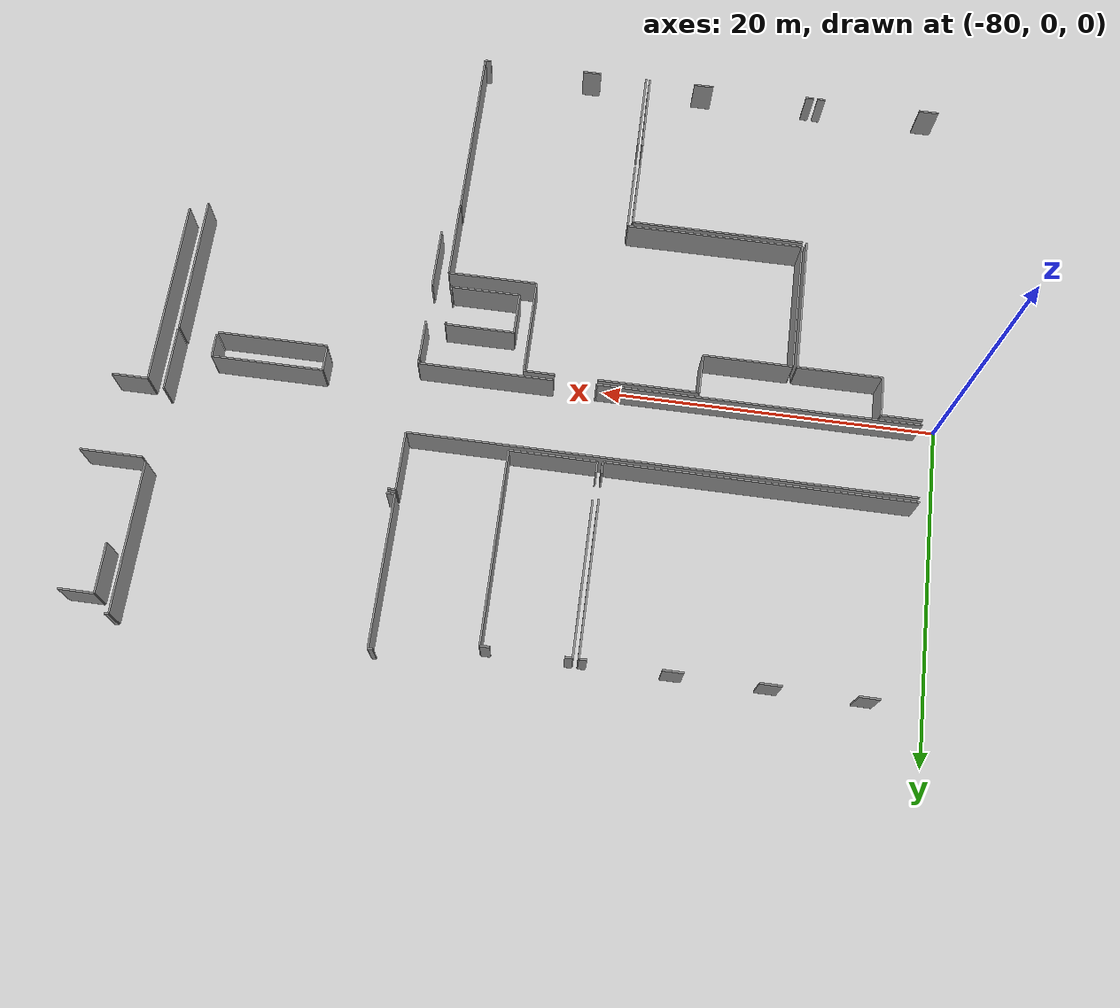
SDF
<sdf version="1.6">
 <world name="default">
  <model name="ground_plane">
   <static>1</static>
   <link name="link">
    <collision name="collision">
     <geometry><plane><normal>0 0 1</normal><size>100 100</size></plane></geometry>
     <surface><friction><ode><mu>100</mu><mu2>50</mu2></ode></friction></surface>
    </collision>
    <visual name="visual">
     <cast_shadows>0</cast_shadows>
     <geometry><plane><normal>0 0 1</normal><size>100 100</size></plane></geometry>
     <material>
      <script><uri>file://media/materials/scripts/gazebo.material</uri><name>Gazebo/Grey</name></script>
     </material>
    </visual>
   </link>
  </model>
  <model name="50037765_PLAN3">
   <static>1</static>
   <link name="Wall_52">
    <collision name="Wall_52_Collision">
     <geometry><box><size>1.44526558598 0.1 2.5</size></box></geometry>
     <pose>0.72263279299 0 1.25 0 0 0</pose>
    </collision>
    <visual name="Wall_52_Visual">
     <pose>0.72263279299 0 1.25 0 0 0</pose>
     <geometry><box><size>1.44526558598 0.1 2.5</size></box></geometry>
     <material>
      <script><uri>file://media/materials/scripts/gazebo.material</uri><name>Gazebo/Grey</name></script>
      <ambient>1 1 1 1</ambient>
     </material>
    </visual>
    <pose>99.1906411047 -20.8225254021 0 0 0 1.57079632679</pose>
   </link>
   <link name="Wall_53">
    <collision name="Wall_53_Collision">
     <geometry><box><size>6.73245683712 0.1 2.5</size></box></geometry>
     <pose>3.36622841856 0 1.25 0 0 0</pose>
    </collision>
    <visual name="Wall_53_Visual">
     <pose>3.36622841856 0 1.25 0 0 0</pose>
     <geometry><box><size>6.73245683712 0.1 2.5</size></box></geometry>
     <material>
      <script><uri>file://media/materials/scripts/gazebo.material</uri><name>Gazebo/Grey</name></script>
      <ambient>1 1 1 1</ambient>
     </material>
    </visual>
    <pose>99.1906411047 -19.3772598161 0 0 0 3.14159265359</pose>
   </link>
   <link name="Wall_54">
    <collision name="Wall_54_Collision">
     <geometry><box><size>1.43077734497 0.1 2.5</size></box></geometry>
     <pose>0.715388672483 0 1.25 0 0 0</pose>
    </collision>
    <visual name="Wall_54_Visual">
     <pose>0.715388672483 0 1.25 0 0 0</pose>
     <geometry><box><size>1.43077734497 0.1 2.5</size></box></geometry>
     <material>
      <script><uri>file://media/materials/scripts/gazebo.material</uri><name>Gazebo/Grey</name></script>
      <ambient>1 1 1 1</ambient>
     </material>
    </visual>
    <pose>92.4581842675 -19.3772598161 0 0 0 -1.57079632679</pose>
   </link>
   <link name="Wall_55">
    <collision name="Wall_55_Collision">
     <geometry><box><size>0.224694825537 0.1 2.5</size></box></geometry>
     <pose>0.112347412769 0 1.25 0 0 0</pose>
    </collision>
    <visual name="Wall_55_Visual">
     <pose>0.112347412769 0 1.25 0 0 0</pose>
     <geometry><box><size>0.224694825537 0.1 2.5</size></box></geometry>
     <material>
      <script><uri>file://media/materials/scripts/gazebo.material</uri><name>Gazebo/Grey</name></script>
      <ambient>1 1 1 1</ambient>
     </material>
    </visual>
    <pose>86.8952080778 -20.8080371611 0 0 0 1.57079632679</pose>
   </link>
   <link name="Wall_56">
    <collision name="Wall_56_Collision">
     <geometry><box><size>8.12891992705 0.1 2.5</size></box></geometry>
     <pose>4.06445996353 0 1.25 0 0 0</pose>
    </collision>
    <visual name="Wall_56_Visual">
     <pose>4.06445996353 0 1.25 0 0 0</pose>
     <geometry><box><size>8.12891992705 0.1 2.5</size></box></geometry>
     <material>
      <script><uri>file://media/materials/scripts/gazebo.material</uri><name>Gazebo/Grey</name></script>
      <ambient>1 1 1 1</ambient>
     </material>
    </visual>
    <pose>86.8952080778 -20.5833423355 0 0 0 3.14159265359</pose>
   </link>
   <link name="Wall_57">
    <collision name="Wall_57_Collision">
     <geometry><box><size>0.0612572997223 0.1 2.5</size></box></geometry>
     <pose>0.0306286498612 0 1.25 0 0 0</pose>
    </collision>
    <visual name="Wall_57_Visual">
     <pose>0.0306286498612 0 1.25 0 0 0</pose>
     <geometry><box><size>0.0612572997223 0.1 2.5</size></box></geometry>
     <material>
      <script><uri>file://media/materials/scripts/gazebo.material</uri><name>Gazebo/Grey</name></script>
      <ambient>1 1 1 1</ambient>
     </material>
    </visual>
    <pose>76.1894146878 -20.5833423355 0 0 0 -1.57079632679</pose>
   </link>
   <link name="Wall_58">
    <collision name="Wall_58_Collision">
     <geometry><box><size>19.2269125431 0.1 2.5</size></box></geometry>
     <pose>9.61345627157 0 1.25 0 0 0</pose>
    </collision>
    <visual name="Wall_58_Visual">
     <pose>9.61345627157 0 1.25 0 0 0</pose>
     <geometry><box><size>19.2269125431 0.1 2.5</size></box></geometry>
     <material>
      <script><uri>file://media/materials/scripts/gazebo.material</uri><name>Gazebo/Grey</name></script>
      <ambient>1 1 1 1</ambient>
     </material>
    </visual>
    <pose>76.1894146878 -20.6445996353 0 0 0 3.14159265359</pose>
   </link>
   <link name="Wall_63">
    <collision name="Wall_63_Collision">
     <geometry><box><size>29.9428731199 0.1 2.5</size></box></geometry>
     <pose>14.9714365599 0 1.25 0 0 0</pose>
    </collision>
    <visual name="Wall_63_Visual">
     <pose>14.9714365599 0 1.25 0 0 0</pose>
     <geometry><box><size>29.9428731199 0.1 2.5</size></box></geometry>
     <material>
      <script><uri>file://media/materials/scripts/gazebo.material</uri><name>Gazebo/Grey</name></script>
      <ambient>1 1 1 1</ambient>
     </material>
    </visual>
    <pose>56.9625021446 -16.1278523724 0 0 0 0.0</pose>
   </link>
   <link name="Wall_64">
    <collision name="Wall_64_Collision">
     <geometry><box><size>3.56919088258 0.1 2.5</size></box></geometry>
     <pose>1.78459544129 0 1.25 0 0 0</pose>
    </collision>
    <visual name="Wall_64_Visual">
     <pose>1.78459544129 0 1.25 0 0 0</pose>
     <geometry><box><size>3.56919088258 0.1 2.5</size></box></geometry>
     <material>
      <script><uri>file://media/materials/scripts/gazebo.material</uri><name>Gazebo/Grey</name></script>
      <ambient>1 1 1 1</ambient>
     </material>
    </visual>
    <pose>86.9053752645 -16.1278523724 0 0 0 1.57079632679</pose>
   </link>
   <link name="Wall_65">
    <collision name="Wall_65_Collision">
     <geometry><box><size>0.469978204094 0.1 2.5</size></box></geometry>
     <pose>0.234989102047 0 1.25 0 0 0</pose>
    </collision>
    <visual name="Wall_65_Visual">
     <pose>0.234989102047 0 1.25 0 0 0</pose>
     <geometry><box><size>0.469978204094 0.1 2.5</size></box></geometry>
     <material>
      <script><uri>file://media/materials/scripts/gazebo.material</uri><name>Gazebo/Grey</name></script>
      <ambient>1 1 1 1</ambient>
     </material>
    </visual>
    <pose>86.9053752645 -12.5586614899 0 0 0 0.0</pose>
   </link>
   <link name="Wall_66">
    <collision name="Wall_66_Collision">
     <geometry><box><size>3.86607838194 0.1 2.5</size></box></geometry>
     <pose>1.93303919097 0 1.25 0 0 0</pose>
    </collision>
    <visual name="Wall_66_Visual">
     <pose>1.93303919097 0 1.25 0 0 0</pose>
     <geometry><box><size>3.86607838194 0.1 2.5</size></box></geometry>
     <material>
      <script><uri>file://media/materials/scripts/gazebo.material</uri><name>Gazebo/Grey</name></script>
      <ambient>1 1 1 1</ambient>
     </material>
    </visual>
    <pose>101.56696681 -16.9564526686 0 0 0 -1.57250572684</pose>
   </link>
   <link name="Wall_67">
    <collision name="Wall_67_Collision">
     <geometry><box><size>18.3477050753 0.1 2.5</size></box></geometry>
     <pose>9.17385253767 0 1.25 0 0 0</pose>
    </collision>
    <visual name="Wall_67_Visual">
     <pose>9.17385253767 0 1.25 0 0 0</pose>
     <geometry><box><size>18.3477050753 0.1 2.5</size></box></geometry>
     <material>
      <script><uri>file://media/materials/scripts/gazebo.material</uri><name>Gazebo/Grey</name></script>
      <ambient>1 1 1 1</ambient>
     </material>
    </visual>
    <pose>75.2812307379 -15.8521945237 0 0 0 3.14159265359</pose>
   </link>
   <link name="Wall_72">
    <collision name="Wall_72_Collision">
     <geometry><box><size>1.18600232574 0.1 2.5</size></box></geometry>
     <pose>0.593001162872 0 1.25 0 0 0</pose>
    </collision>
    <visual name="Wall_72_Visual">
     <pose>0.593001162872 0 1.25 0 0 0</pose>
     <geometry><box><size>1.18600232574 0.1 2.5</size></box></geometry>
     <material>
      <script><uri>file://media/materials/scripts/gazebo.material</uri><name>Gazebo/Grey</name></script>
      <ambient>1 1 1 1</ambient>
     </material>
    </visual>
    <pose>58.5900145518 -4.20443670609 0 0 0 0.0</pose>
   </link>
   <link name="Wall_73">
    <collision name="Wall_73_Collision">
     <geometry><box><size>1.27547356849 0.1 2.5</size></box></geometry>
     <pose>0.637736784246 0 1.25 0 0 0</pose>
    </collision>
    <visual name="Wall_73_Visual">
     <pose>0.637736784246 0 1.25 0 0 0</pose>
     <geometry><box><size>1.27547356849 0.1 2.5</size></box></geometry>
     <material>
      <script><uri>file://media/materials/scripts/gazebo.material</uri><name>Gazebo/Grey</name></script>
      <ambient>1 1 1 1</ambient>
     </material>
    </visual>
    <pose>63.96337271 -4.20443670609 0 0 0 0.0</pose>
   </link>
   <link name="Wall_74">
    <collision name="Wall_74_Collision">
     <geometry><box><size>1.21269119077 0.1 2.5</size></box></geometry>
     <pose>0.606345595384 0 1.25 0 0 0</pose>
    </collision>
    <visual name="Wall_74_Visual">
     <pose>0.606345595384 0 1.25 0 0 0</pose>
     <geometry><box><size>1.21269119077 0.1 2.5</size></box></geometry>
     <material>
      <script><uri>file://media/materials/scripts/gazebo.material</uri><name>Gazebo/Grey</name></script>
      <ambient>1 1 1 1</ambient>
     </material>
    </visual>
    <pose>69.3855333643 -4.20443670609 0 0 0 0.0</pose>
   </link>
   <link name="Wall_75">
    <collision name="Wall_75_Collision">
     <geometry><box><size>0.452439807078 0.1 2.5</size></box></geometry>
     <pose>0.226219903539 0 1.25 0 0 0</pose>
    </collision>
    <visual name="Wall_75_Visual">
     <pose>0.226219903539 0 1.25 0 0 0</pose>
     <geometry><box><size>0.452439807078 0.1 2.5</size></box></geometry>
     <material>
      <script><uri>file://media/materials/scripts/gazebo.material</uri><name>Gazebo/Grey</name></script>
      <ambient>1 1 1 1</ambient>
     </material>
    </visual>
    <pose>74.7825302315 -4.20443670609 0 0 0 0.0</pose>
   </link>
   <link name="Wall_76">
    <collision name="Wall_76_Collision">
     <geometry><box><size>9.34908400003 0.1 2.5</size></box></geometry>
     <pose>4.67454200001 0 1.25 0 0 0</pose>
    </collision>
    <visual name="Wall_76_Visual">
     <pose>4.67454200001 0 1.25 0 0 0</pose>
     <geometry><box><size>9.34908400003 0.1 2.5</size></box></geometry>
     <material>
      <script><uri>file://media/materials/scripts/gazebo.material</uri><name>Gazebo/Grey</name></script>
      <ambient>1 1 1 1</ambient>
     </material>
    </visual>
    <pose>75.2349700386 -4.20443670609 0 0 0 -1.57079632679</pose>
   </link>
   <link name="Wall_77">
    <collision name="Wall_77_Collision">
     <geometry><box><size>0.731519050086 0.1 2.5</size></box></geometry>
     <pose>0.365759525043 0 1.25 0 0 0</pose>
    </collision>
    <visual name="Wall_77_Visual">
     <pose>0.365759525043 0 1.25 0 0 0</pose>
     <geometry><box><size>0.731519050086 0.1 2.5</size></box></geometry>
     <material>
      <script><uri>file://media/materials/scripts/gazebo.material</uri><name>Gazebo/Grey</name></script>
      <ambient>1 1 1 1</ambient>
     </material>
    </visual>
    <pose>75.2349700386 -15.1221396844 0 0 0 -1.50751487255</pose>
   </link>
   <link name="Wall_78">
    <collision name="Wall_78_Collision">
     <geometry><box><size>5.21729184274 0.1 2.5</size></box></geometry>
     <pose>2.60864592137 0 1.25 0 0 0</pose>
    </collision>
    <visual name="Wall_78_Visual">
     <pose>2.60864592137 0 1.25 0 0 0</pose>
     <geometry><box><size>5.21729184274 0.1 2.5</size></box></geometry>
     <material>
      <script><uri>file://media/materials/scripts/gazebo.material</uri><name>Gazebo/Grey</name></script>
      <ambient>1 1 1 1</ambient>
     </material>
    </visual>
    <pose>80.7964211503 -15.8342494392 0 0 0 3.14159265359</pose>
   </link>
   <link name="Wall_79">
    <collision name="Wall_79_Collision">
     <geometry><box><size>0.6975960958 0.1 2.5</size></box></geometry>
     <pose>0.3487980479 0 1.25 0 0 0</pose>
    </collision>
    <visual name="Wall_79_Visual">
     <pose>0.3487980479 0 1.25 0 0 0</pose>
     <geometry><box><size>0.6975960958 0.1 2.5</size></box></geometry>
     <material>
      <script><uri>file://media/materials/scripts/gazebo.material</uri><name>Gazebo/Grey</name></script>
      <ambient>1 1 1 1</ambient>
     </material>
    </visual>
    <pose>75.5791293076 -15.8342494392 0 0 0 1.57079632679</pose>
   </link>
   <link name="Wall_80">
    <collision name="Wall_80_Collision">
     <geometry><box><size>9.29082602037 0.1 2.5</size></box></geometry>
     <pose>4.64541301019 0 1.25 0 0 0</pose>
    </collision>
    <visual name="Wall_80_Visual">
     <pose>4.64541301019 0 1.25 0 0 0</pose>
     <geometry><box><size>9.29082602037 0.1 2.5</size></box></geometry>
     <material>
      <script><uri>file://media/materials/scripts/gazebo.material</uri><name>Gazebo/Grey</name></script>
      <ambient>1 1 1 1</ambient>
     </material>
    </visual>
    <pose>75.5791293076 -13.4842821648 0 0 0 1.57079632679</pose>
   </link>
   <link name="Wall_81">
    <collision name="Wall_81_Collision">
     <geometry><box><size>0.450406369742 0.1 2.5</size></box></geometry>
     <pose>0.225203184871 0 1.25 0 0 0</pose>
    </collision>
    <visual name="Wall_81_Visual">
     <pose>0.225203184871 0 1.25 0 0 0</pose>
     <geometry><box><size>0.450406369742 0.1 2.5</size></box></geometry>
     <material>
      <script><uri>file://media/materials/scripts/gazebo.material</uri><name>Gazebo/Grey</name></script>
      <ambient>1 1 1 1</ambient>
     </material>
    </visual>
    <pose>75.5791293076 -4.19345614448 0 0 0 0.0</pose>
   </link>
   <link name="Wall_82">
    <collision name="Wall_82_Collision">
     <geometry><box><size>0.56859991485 0.1 2.5</size></box></geometry>
     <pose>0.284299957425 0 1.25 0 0 0</pose>
    </collision>
    <visual name="Wall_82_Visual">
     <pose>0.284299957425 0 1.25 0 0 0</pose>
     <geometry><box><size>0.56859991485 0.1 2.5</size></box></geometry>
     <material>
      <script><uri>file://media/materials/scripts/gazebo.material</uri><name>Gazebo/Grey</name></script>
      <ambient>1 1 1 1</ambient>
     </material>
    </visual>
    <pose>80.2100286588 -4.19345614448 0 0 0 0.0</pose>
   </link>
   <link name="Wall_83">
    <collision name="Wall_83_Collision">
     <geometry><box><size>11.6408068924 0.1 2.5</size></box></geometry>
     <pose>5.82040344621 0 1.25 0 0 0</pose>
    </collision>
    <visual name="Wall_83_Visual">
     <pose>5.82040344621 0 1.25 0 0 0</pose>
     <geometry><box><size>11.6408068924 0.1 2.5</size></box></geometry>
     <material>
      <script><uri>file://media/materials/scripts/gazebo.material</uri><name>Gazebo/Grey</name></script>
      <ambient>1 1 1 1</ambient>
     </material>
    </visual>
    <pose>80.7786285736 -4.19345614448 0 0 0 -1.56926786027</pose>
   </link>
   <link name="Wall_84">
    <collision name="Wall_84_Collision">
     <geometry><box><size>8.39097916362 0.1 2.5</size></box></geometry>
     <pose>4.19548958181 0 1.25 0 0 0</pose>
    </collision>
    <visual name="Wall_84_Visual">
     <pose>4.19548958181 0 1.25 0 0 0</pose>
     <geometry><box><size>8.39097916362 0.1 2.5</size></box></geometry>
     <material>
      <script><uri>file://media/materials/scripts/gazebo.material</uri><name>Gazebo/Grey</name></script>
      <ambient>1 1 1 1</ambient>
     </material>
    </visual>
    <pose>64.4999459868 -31.7545386957 0 0 0 1.57079632679</pose>
   </link>
   <link name="Wall_85">
    <collision name="Wall_85_Collision">
     <geometry><box><size>5.09731903996 0.1 2.5</size></box></geometry>
     <pose>2.54865951998 0 1.25 0 0 0</pose>
    </collision>
    <visual name="Wall_85_Visual">
     <pose>2.54865951998 0 1.25 0 0 0</pose>
     <geometry><box><size>5.09731903996 0.1 2.5</size></box></geometry>
     <material>
      <script><uri>file://media/materials/scripts/gazebo.material</uri><name>Gazebo/Grey</name></script>
      <ambient>1 1 1 1</ambient>
     </material>
    </visual>
    <pose>64.4999459868 -23.3635595321 0 0 0 3.14159265359</pose>
   </link>
   <link name="Wall_86">
    <collision name="Wall_86_Collision">
     <geometry><box><size>2.41775699153 0.1 2.5</size></box></geometry>
     <pose>1.20887849576 0 1.25 0 0 0</pose>
    </collision>
    <visual name="Wall_86_Visual">
     <pose>1.20887849576 0 1.25 0 0 0</pose>
     <geometry><box><size>2.41775699153 0.1 2.5</size></box></geometry>
     <material>
      <script><uri>file://media/materials/scripts/gazebo.material</uri><name>Gazebo/Grey</name></script>
      <ambient>1 1 1 1</ambient>
     </material>
    </visual>
    <pose>59.4026269469 -23.3635595321 0 0 0 1.57079632679</pose>
   </link>
   <link name="Wall_87">
    <collision name="Wall_87_Collision">
     <geometry><box><size>2.44114152088 0.1 2.5</size></box></geometry>
     <pose>1.22057076044 0 1.25 0 0 0</pose>
    </collision>
    <visual name="Wall_87_Visual">
     <pose>1.22057076044 0 1.25 0 0 0</pose>
     <geometry><box><size>2.44114152088 0.1 2.5</size></box></geometry>
     <material>
      <script><uri>file://media/materials/scripts/gazebo.material</uri><name>Gazebo/Grey</name></script>
      <ambient>1 1 1 1</ambient>
     </material>
    </visual>
    <pose>59.4026269469 -20.9458025405 0 0 0 3.14159265359</pose>
   </link>
   <link name="Wall_94">
    <collision name="Wall_94_Collision">
     <geometry><box><size>1.2131995501 0.1 2.5</size></box></geometry>
     <pose>0.606599775051 0 1.25 0 0 0</pose>
    </collision>
    <visual name="Wall_94_Visual">
     <pose>0.606599775051 0 1.25 0 0 0</pose>
     <geometry><box><size>1.2131995501 0.1 2.5</size></box></geometry>
     <material>
      <script><uri>file://media/materials/scripts/gazebo.material</uri><name>Gazebo/Grey</name></script>
      <ambient>1 1 1 1</ambient>
     </material>
    </visual>
    <pose>56.7932184865 -42.1916641778 0 0 0 0.0</pose>
   </link>
   <link name="Wall_95">
    <collision name="Wall_95_Collision">
     <geometry><box><size>0.495065326786 0.1 2.5</size></box></geometry>
     <pose>0.247532663393 0 1.25 0 0 0</pose>
    </collision>
    <visual name="Wall_95_Visual">
     <pose>0.247532663393 0 1.25 0 0 0</pose>
     <geometry><box><size>0.495065326786 0.1 2.5</size></box></geometry>
     <material>
      <script><uri>file://media/materials/scripts/gazebo.material</uri><name>Gazebo/Grey</name></script>
      <ambient>1 1 1 1</ambient>
     </material>
    </visual>
    <pose>64.006837433 -42.1916641778 0 0 0 -0.0889399985977</pose>
   </link>
   <link name="Wall_96">
    <collision name="Wall_96_Collision">
     <geometry><box><size>1.22311255711 0.1 2.5</size></box></geometry>
     <pose>0.611556278555 0 1.25 0 0 0</pose>
    </collision>
    <visual name="Wall_96_Visual">
     <pose>0.611556278555 0 1.25 0 0 0</pose>
     <geometry><box><size>1.22311255711 0.1 2.5</size></box></geometry>
     <material>
      <script><uri>file://media/materials/scripts/gazebo.material</uri><name>Gazebo/Grey</name></script>
      <ambient>1 1 1 1</ambient>
     </material>
    </visual>
    <pose>72.431114133 -42.2259784329 0 0 0 3.14159265359</pose>
   </link>
   <link name="Wall_97">
    <collision name="Wall_97_Collision">
     <geometry><box><size>0.496667069118 0.1 2.5</size></box></geometry>
     <pose>0.248333534559 0 1.25 0 0 0</pose>
    </collision>
    <visual name="Wall_97_Visual">
     <pose>0.248333534559 0 1.25 0 0 0</pose>
     <geometry><box><size>0.496667069118 0.1 2.5</size></box></geometry>
     <material>
      <script><uri>file://media/materials/scripts/gazebo.material</uri><name>Gazebo/Grey</name></script>
      <ambient>1 1 1 1</ambient>
     </material>
    </visual>
    <pose>65.2452007702 -42.2259784329 0 0 0 3.14159265359</pose>
   </link>
   <link name="Wall_98">
    <collision name="Wall_98_Collision">
     <geometry><box><size>10.5110917652 0.1 2.5</size></box></geometry>
     <pose>5.25554588261 0 1.25 0 0 0</pose>
    </collision>
    <visual name="Wall_98_Visual">
     <pose>5.25554588261 0 1.25 0 0 0</pose>
     <geometry><box><size>10.5110917652 0.1 2.5</size></box></geometry>
     <material>
      <script><uri>file://media/materials/scripts/gazebo.material</uri><name>Gazebo/Grey</name></script>
      <ambient>1 1 1 1</ambient>
     </material>
    </visual>
    <pose>64.748533701 -31.7530136177 0 0 0 0.0</pose>
   </link>
   <link name="Wall_99">
    <collision name="Wall_99_Collision">
     <geometry><box><size>3.96977803761 0.1 2.5</size></box></geometry>
     <pose>1.9848890188 0 1.25 0 0 0</pose>
    </collision>
    <visual name="Wall_99_Visual">
     <pose>1.9848890188 0 1.25 0 0 0</pose>
     <geometry><box><size>3.96977803761 0.1 2.5</size></box></geometry>
     <material>
      <script><uri>file://media/materials/scripts/gazebo.material</uri><name>Gazebo/Grey</name></script>
      <ambient>1 1 1 1</ambient>
     </material>
    </visual>
    <pose>75.2596254663 -31.7530136177 0 0 0 -1.57079632679</pose>
   </link>
   <link name="Wall_100">
    <collision name="Wall_100_Collision">
     <geometry><box><size>4.94470405439 0.1 2.5</size></box></geometry>
     <pose>2.47235202719 0 1.25 0 0 0</pose>
    </collision>
    <visual name="Wall_100_Visual">
     <pose>2.47235202719 0 1.25 0 0 0</pose>
     <geometry><box><size>4.94470405439 0.1 2.5</size></box></geometry>
     <material>
      <script><uri>file://media/materials/scripts/gazebo.material</uri><name>Gazebo/Grey</name></script>
      <ambient>1 1 1 1</ambient>
     </material>
    </visual>
    <pose>75.2596254663 -37.2814213727 0 0 0 -1.56308558669</pose>
   </link>
   <link name="Wall_101">
    <collision name="Wall_101_Collision">
     <geometry><box><size>0.388132351353 0.1 2.5</size></box></geometry>
     <pose>0.194066175676 0 1.25 0 0 0</pose>
    </collision>
    <visual name="Wall_101_Visual">
     <pose>0.194066175676 0 1.25 0 0 0</pose>
     <geometry><box><size>0.388132351353 0.1 2.5</size></box></geometry>
     <material>
      <script><uri>file://media/materials/scripts/gazebo.material</uri><name>Gazebo/Grey</name></script>
      <ambient>1 1 1 1</ambient>
     </material>
    </visual>
    <pose>86.0195591254 -42.2468211655 0 0 0 3.14159265359</pose>
   </link>
   <link name="Wall_102">
    <collision name="Wall_102_Collision">
     <geometry><box><size>1.14990881304 0.1 2.5</size></box></geometry>
     <pose>0.574954406522 0 1.25 0 0 0</pose>
    </collision>
    <visual name="Wall_102_Visual">
     <pose>0.574954406522 0 1.25 0 0 0</pose>
     <geometry><box><size>1.14990881304 0.1 2.5</size></box></geometry>
     <material>
      <script><uri>file://media/materials/scripts/gazebo.material</uri><name>Gazebo/Grey</name></script>
      <ambient>1 1 1 1</ambient>
     </material>
    </visual>
    <pose>79.6160107772 -42.2468211655 0 0 0 3.14159265359</pose>
   </link>
   <link name="Wall_103">
    <collision name="Wall_103_Collision">
     <geometry><box><size>4.90668428979 0.1 2.5</size></box></geometry>
     <pose>2.4533421449 0 1.25 0 0 0</pose>
    </collision>
    <visual name="Wall_103_Visual">
     <pose>2.4533421449 0 1.25 0 0 0</pose>
     <geometry><box><size>4.90668428979 0.1 2.5</size></box></geometry>
     <material>
      <script><uri>file://media/materials/scripts/gazebo.material</uri><name>Gazebo/Grey</name></script>
      <ambient>1 1 1 1</ambient>
     </material>
    </visual>
    <pose>75.5468484899 -42.2468211655 0 0 0 1.57079632679</pose>
   </link>
   <link name="Wall_104">
    <collision name="Wall_104_Collision">
     <geometry><box><size>4.20616512782 0.1 2.5</size></box></geometry>
     <pose>2.10308256391 0 1.25 0 0 0</pose>
    </collision>
    <visual name="Wall_104_Visual">
     <pose>2.10308256391 0 1.25 0 0 0</pose>
     <geometry><box><size>4.20616512782 0.1 2.5</size></box></geometry>
     <material>
      <script><uri>file://media/materials/scripts/gazebo.material</uri><name>Gazebo/Grey</name></script>
      <ambient>1 1 1 1</ambient>
     </material>
    </visual>
    <pose>75.5468484899 -35.7090659533 0 0 0 1.57079632679</pose>
   </link>
   <link name="Wall_105">
    <collision name="Wall_105_Collision">
     <geometry><box><size>10.7439363627 0.1 2.5</size></box></geometry>
     <pose>5.37196818137 0 1.25 0 0 0</pose>
    </collision>
    <visual name="Wall_105_Visual">
     <pose>5.37196818137 0 1.25 0 0 0</pose>
     <geometry><box><size>10.7439363627 0.1 2.5</size></box></geometry>
     <material>
      <script><uri>file://media/materials/scripts/gazebo.material</uri><name>Gazebo/Grey</name></script>
      <ambient>1 1 1 1</ambient>
     </material>
    </visual>
    <pose>86.0010040097 -31.5029008254 0 0 0 -1.56906929452</pose>
   </link>
   <link name="Wall_106">
    <collision name="Wall_106_Collision">
     <geometry><box><size>10.7581544014 0.1 2.5</size></box></geometry>
     <pose>5.37907720072 0 1.25 0 0 0</pose>
    </collision>
    <visual name="Wall_106_Visual">
     <pose>5.37907720072 0 1.25 0 0 0</pose>
     <geometry><box><size>10.7581544014 0.1 2.5</size></box></geometry>
     <material>
      <script><uri>file://media/materials/scripts/gazebo.material</uri><name>Gazebo/Grey</name></script>
      <ambient>1 1 1 1</ambient>
     </material>
    </visual>
    <pose>75.5232097808 -31.4574026651 0 0 0 3.14159265359</pose>
   </link>
   <link name="Wall_107">
    <collision name="Wall_107_Collision">
     <geometry><box><size>8.08138832934 0.1 2.5</size></box></geometry>
     <pose>4.04069416467 0 1.25 0 0 0</pose>
    </collision>
    <visual name="Wall_107_Visual">
     <pose>4.04069416467 0 1.25 0 0 0</pose>
     <geometry><box><size>8.08138832934 0.1 2.5</size></box></geometry>
     <material>
      <script><uri>file://media/materials/scripts/gazebo.material</uri><name>Gazebo/Grey</name></script>
      <ambient>1 1 1 1</ambient>
     </material>
    </visual>
    <pose>64.7650553794 -31.4574026651 0 0 0 1.57079632679</pose>
   </link>
   <link name="Wall_108">
    <collision name="Wall_108_Collision">
     <geometry><box><size>5.3603949952 0.1 2.5</size></box></geometry>
     <pose>2.6801974976 0 1.25 0 0 0</pose>
    </collision>
    <visual name="Wall_108_Visual">
     <pose>2.6801974976 0 1.25 0 0 0</pose>
     <geometry><box><size>5.3603949952 0.1 2.5</size></box></geometry>
     <material>
      <script><uri>file://media/materials/scripts/gazebo.material</uri><name>Gazebo/Grey</name></script>
      <ambient>1 1 1 1</ambient>
     </material>
    </visual>
    <pose>64.7650553794 -23.3760143357 0 0 0 0.0</pose>
   </link>
   <link name="Wall_109">
    <collision name="Wall_109_Collision">
     <geometry><box><size>2.43885390388 0.1 2.5</size></box></geometry>
     <pose>1.21942695194 0 1.25 0 0 0</pose>
    </collision>
    <visual name="Wall_109_Visual">
     <pose>1.21942695194 0 1.25 0 0 0</pose>
     <geometry><box><size>2.43885390388 0.1 2.5</size></box></geometry>
     <material>
      <script><uri>file://media/materials/scripts/gazebo.material</uri><name>Gazebo/Grey</name></script>
      <ambient>1 1 1 1</ambient>
     </material>
    </visual>
    <pose>70.1254503746 -23.3760143357 0 0 0 1.57079632679</pose>
   </link>
   <link name="Wall_110">
    <collision name="Wall_110_Collision">
     <geometry><box><size>6.04057978382 0.1 2.5</size></box></geometry>
     <pose>3.02028989191 0 1.25 0 0 0</pose>
    </collision>
    <visual name="Wall_110_Visual">
     <pose>3.02028989191 0 1.25 0 0 0</pose>
     <geometry><box><size>6.04057978382 0.1 2.5</size></box></geometry>
     <material>
      <script><uri>file://media/materials/scripts/gazebo.material</uri><name>Gazebo/Grey</name></script>
      <ambient>1 1 1 1</ambient>
     </material>
    </visual>
    <pose>70.1254503746 -20.9371604319 0 0 0 0.0</pose>
   </link>
   <link name="Wall_111">
    <collision name="Wall_111_Collision">
     <geometry><box><size>1.86034098202 0.1 2.5</size></box></geometry>
     <pose>0.930170491012 0 1.25 0 0 0</pose>
    </collision>
    <visual name="Wall_111_Visual">
     <pose>0.930170491012 0 1.25 0 0 0</pose>
     <geometry><box><size>1.86034098202 0.1 2.5</size></box></geometry>
     <material>
      <script><uri>file://media/materials/scripts/gazebo.material</uri><name>Gazebo/Grey</name></script>
      <ambient>1 1 1 1</ambient>
     </material>
    </visual>
    <pose>78.7472246758 -20.9371604319 0 0 0 0.0</pose>
   </link>
   <link name="Wall_112">
    <collision name="Wall_112_Collision">
     <geometry><box><size>5.82579796529 0.1 2.5</size></box></geometry>
     <pose>2.91289898265 0 1.25 0 0 0</pose>
    </collision>
    <visual name="Wall_112_Visual">
     <pose>2.91289898265 0 1.25 0 0 0</pose>
     <geometry><box><size>5.82579796529 0.1 2.5</size></box></geometry>
     <material>
      <script><uri>file://media/materials/scripts/gazebo.material</uri><name>Gazebo/Grey</name></script>
      <ambient>1 1 1 1</ambient>
     </material>
    </visual>
    <pose>80.6075656578 -20.9371604319 0 0 0 -1.57079632679</pose>
   </link>
   <link name="Wall_113">
    <collision name="Wall_113_Collision">
     <geometry><box><size>5.39242163323 0.1 2.5</size></box></geometry>
     <pose>2.69621081662 0 1.25 0 0 0</pose>
    </collision>
    <visual name="Wall_113_Visual">
     <pose>2.69621081662 0 1.25 0 0 0</pose>
     <geometry><box><size>5.39242163323 0.1 2.5</size></box></geometry>
     <material>
      <script><uri>file://media/materials/scripts/gazebo.material</uri><name>Gazebo/Grey</name></script>
      <ambient>1 1 1 1</ambient>
     </material>
    </visual>
    <pose>80.6075656578 -26.7629583971 0 0 0 0.0</pose>
   </link>
   <link name="Wall_114">
    <collision name="Wall_114_Collision">
     <geometry><box><size>4.69453213381 0.1 2.5</size></box></geometry>
     <pose>2.3472660669 0 1.25 0 0 0</pose>
    </collision>
    <visual name="Wall_114_Visual">
     <pose>2.3472660669 0 1.25 0 0 0</pose>
     <geometry><box><size>4.69453213381 0.1 2.5</size></box></geometry>
     <material>
      <script><uri>file://media/materials/scripts/gazebo.material</uri><name>Gazebo/Grey</name></script>
      <ambient>1 1 1 1</ambient>
     </material>
    </visual>
    <pose>85.999987291 -26.7629583971 0 0 0 -1.56467804264</pose>
   </link>
   <link name="Wall_115">
    <collision name="Wall_115_Collision">
     <geometry><box><size>0.508613513462 0.1 2.5</size></box></geometry>
     <pose>0.254306756731 0 1.25 0 0 0</pose>
    </collision>
    <visual name="Wall_115_Visual">
     <pose>0.254306756731 0 1.25 0 0 0</pose>
     <geometry><box><size>0.508613513462 0.1 2.5</size></box></geometry>
     <material>
      <script><uri>file://media/materials/scripts/gazebo.material</uri><name>Gazebo/Grey</name></script>
      <ambient>1 1 1 1</ambient>
     </material>
    </visual>
    <pose>87.4089051846 -12.2976698079 0 0 0 3.14159265359</pose>
   </link>
   <link name="Wall_116">
    <collision name="Wall_116_Collision">
     <geometry><box><size>9.09274380596 0.1 2.5</size></box></geometry>
     <pose>4.54637190298 0 1.25 0 0 0</pose>
    </collision>
    <visual name="Wall_116_Visual">
     <pose>4.54637190298 0 1.25 0 0 0</pose>
     <geometry><box><size>9.09274380596 0.1 2.5</size></box></geometry>
     <material>
      <script><uri>file://media/materials/scripts/gazebo.material</uri><name>Gazebo/Grey</name></script>
      <ambient>1 1 1 1</ambient>
     </material>
    </visual>
    <pose>86.9002916712 -12.2976698079 0 0 0 1.57079632679</pose>
   </link>
   <link name="Wall_117">
    <collision name="Wall_117_Collision">
     <geometry><box><size>0.278326735253 0.1 2.5</size></box></geometry>
     <pose>0.139163367626 0 1.25 0 0 0</pose>
    </collision>
    <visual name="Wall_117_Visual">
     <pose>0.139163367626 0 1.25 0 0 0</pose>
     <geometry><box><size>0.278326735253 0.1 2.5</size></box></geometry>
     <material>
      <script><uri>file://media/materials/scripts/gazebo.material</uri><name>Gazebo/Grey</name></script>
      <ambient>1 1 1 1</ambient>
     </material>
    </visual>
    <pose>86.9002916712 -3.20492600194 0 0 0 3.14159265359</pose>
   </link>
   <link name="Wall_118">
    <collision name="Wall_118_Collision">
     <geometry><box><size>0.257484002567 0.1 2.5</size></box></geometry>
     <pose>0.128742001284 0 1.25 0 0 0</pose>
    </collision>
    <visual name="Wall_118_Visual">
     <pose>0.128742001284 0 1.25 0 0 0</pose>
     <geometry><box><size>0.257484002567 0.1 2.5</size></box></geometry>
     <material>
      <script><uri>file://media/materials/scripts/gazebo.material</uri><name>Gazebo/Grey</name></script>
      <ambient>1 1 1 1</ambient>
     </material>
    </visual>
    <pose>101.847581163 -3.18532874963 0 0 0 3.14159265359</pose>
   </link>
   <link name="Wall_119">
    <collision name="Wall_119_Collision">
     <geometry><box><size>9.11234792148 0.1 2.5</size></box></geometry>
     <pose>4.55617396074 0 1.25 0 0 0</pose>
    </collision>
    <visual name="Wall_119_Visual">
     <pose>4.55617396074 0 1.25 0 0 0</pose>
     <geometry><box><size>9.11234792148 0.1 2.5</size></box></geometry>
     <material>
      <script><uri>file://media/materials/scripts/gazebo.material</uri><name>Gazebo/Grey</name></script>
      <ambient>1 1 1 1</ambient>
     </material>
    </visual>
    <pose>101.59009716 -3.18532874963 0 0 0 -1.5720236623</pose>
   </link>
   <link name="Wall_120">
    <collision name="Wall_120_Collision">
     <geometry><box><size>3.72881571339 0.1 2.5</size></box></geometry>
     <pose>1.86440785669 0 1.25 0 0 0</pose>
    </collision>
    <visual name="Wall_120_Visual">
     <pose>1.86440785669 0 1.25 0 0 0</pose>
     <geometry><box><size>3.72881571339 0.1 2.5</size></box></geometry>
     <material>
      <script><uri>file://media/materials/scripts/gazebo.material</uri><name>Gazebo/Grey</name></script>
      <ambient>1 1 1 1</ambient>
     </material>
    </visual>
    <pose>86.8827532742 -29.5233495797 0 0 0 1.57079632679</pose>
   </link>
   <link name="Wall_121">
    <collision name="Wall_121_Collision">
     <geometry><box><size>2.40962324219 0.1 2.5</size></box></geometry>
     <pose>1.20481162109 0 1.25 0 0 0</pose>
    </collision>
    <visual name="Wall_121_Visual">
     <pose>1.20481162109 0 1.25 0 0 0</pose>
     <geometry><box><size>2.40962324219 0.1 2.5</size></box></geometry>
     <material>
      <script><uri>file://media/materials/scripts/gazebo.material</uri><name>Gazebo/Grey</name></script>
      <ambient>1 1 1 1</ambient>
     </material>
    </visual>
    <pose>86.8827532742 -23.3600010167 0 0 0 1.57079632679</pose>
   </link>
   <link name="Wall_122">
    <collision name="Wall_122_Collision">
     <geometry><box><size>6.65391532004 0.1 2.5</size></box></geometry>
     <pose>3.32695766002 0 1.25 0 0 0</pose>
    </collision>
    <visual name="Wall_122_Visual">
     <pose>3.32695766002 0 1.25 0 0 0</pose>
     <geometry><box><size>6.65391532004 0.1 2.5</size></box></geometry>
     <material>
      <script><uri>file://media/materials/scripts/gazebo.material</uri><name>Gazebo/Grey</name></script>
      <ambient>1 1 1 1</ambient>
     </material>
    </visual>
    <pose>92.4787728206 -20.9503777745 0 0 0 0.0</pose>
   </link>
   <link name="Wall_123">
    <collision name="Wall_123_Collision">
     <geometry><box><size>8.57307815478 0.1 2.5</size></box></geometry>
     <pose>4.28653907739 0 1.25 0 0 0</pose>
    </collision>
    <visual name="Wall_123_Visual">
     <pose>4.28653907739 0 1.25 0 0 0</pose>
     <geometry><box><size>8.57307815478 0.1 2.5</size></box></geometry>
     <material>
      <script><uri>file://media/materials/scripts/gazebo.material</uri><name>Gazebo/Grey</name></script>
      <ambient>1 1 1 1</ambient>
     </material>
    </visual>
    <pose>101.524264626 -20.9503777745 0 0 0 -1.56581534332</pose>
   </link>
   <link name="Wall_124">
    <collision name="Wall_124_Collision">
     <geometry><box><size>4.19472704281 0.1 2.5</size></box></geometry>
     <pose>2.09736352141 0 1.25 0 0 0</pose>
    </collision>
    <visual name="Wall_124_Visual">
     <pose>2.09736352141 0 1.25 0 0 0</pose>
     <geometry><box><size>4.19472704281 0.1 2.5</size></box></geometry>
     <material>
      <script><uri>file://media/materials/scripts/gazebo.material</uri><name>Gazebo/Grey</name></script>
      <ambient>1 1 1 1</ambient>
     </material>
    </visual>
    <pose>85.7132726268 -25.8476574166 0 0 0 3.14159265359</pose>
   </link>
   <link name="Wall_125">
    <collision name="Wall_125_Collision">
     <geometry><box><size>2.52095393629 0.1 2.5</size></box></geometry>
     <pose>1.26047696814 0 1.25 0 0 0</pose>
    </collision>
    <visual name="Wall_125_Visual">
     <pose>1.26047696814 0 1.25 0 0 0</pose>
     <geometry><box><size>2.52095393629 0.1 2.5</size></box></geometry>
     <material>
      <script><uri>file://media/materials/scripts/gazebo.material</uri><name>Gazebo/Grey</name></script>
      <ambient>1 1 1 1</ambient>
     </material>
    </visual>
    <pose>81.5185455839 -25.8476574166 0 0 0 1.57079632679</pose>
   </link>
   <link name="Wall_126">
    <collision name="Wall_126_Collision">
     <geometry><box><size>4.16498802178 0.1 2.5</size></box></geometry>
     <pose>2.08249401089 0 1.25 0 0 0</pose>
    </collision>
    <visual name="Wall_126_Visual">
     <pose>2.08249401089 0 1.25 0 0 0</pose>
     <geometry><box><size>4.16498802178 0.1 2.5</size></box></geometry>
     <material>
      <script><uri>file://media/materials/scripts/gazebo.material</uri><name>Gazebo/Grey</name></script>
      <ambient>1 1 1 1</ambient>
     </material>
    </visual>
    <pose>81.5185455839 -23.3267034804 0 0 0 0.0</pose>
   </link>
   <link name="Wall_127">
    <collision name="Wall_127_Collision">
     <geometry><box><size>0.135223582789 0.1 2.5</size></box></geometry>
     <pose>0.0676117913947 0 1.25 0 0 0</pose>
    </collision>
    <visual name="Wall_127_Visual">
     <pose>0.0676117913947 0 1.25 0 0 0</pose>
     <geometry><box><size>0.135223582789 0.1 2.5</size></box></geometry>
     <material>
      <script><uri>file://media/materials/scripts/gazebo.material</uri><name>Gazebo/Grey</name></script>
      <ambient>1 1 1 1</ambient>
     </material>
    </visual>
    <pose>85.6835336057 -23.3267034804 0 0 0 -1.57079632679</pose>
   </link>
   <link name="Wall_128">
    <collision name="Wall_128_Collision">
     <geometry><box><size>0.22136378626 0.1 2.5</size></box></geometry>
     <pose>0.11068189313 0 1.25 0 0 0</pose>
    </collision>
    <visual name="Wall_128_Visual">
     <pose>0.11068189313 0 1.25 0 0 0</pose>
     <geometry><box><size>0.22136378626 0.1 2.5</size></box></geometry>
     <material>
      <script><uri>file://media/materials/scripts/gazebo.material</uri><name>Gazebo/Grey</name></script>
      <ambient>1 1 1 1</ambient>
     </material>
    </visual>
    <pose>85.6835336057 -25.6283003641 0 0 0 -1.4360443276</pose>
   </link>
   <link name="Wall_131">
    <collision name="Wall_131_Collision">
     <geometry><box><size>3.72983243205 0.1 2.5</size></box></geometry>
     <pose>1.86491621603 0 1.25 0 0 0</pose>
    </collision>
    <visual name="Wall_131_Visual">
     <pose>1.86491621603 0 1.25 0 0 0</pose>
     <geometry><box><size>3.72983243205 0.1 2.5</size></box></geometry>
     <material>
      <script><uri>file://media/materials/scripts/gazebo.material</uri><name>Gazebo/Grey</name></script>
      <ambient>1 1 1 1</ambient>
     </material>
    </visual>
    <pose>101.830551125 -12.5498160375 0 0 0 0.0</pose>
   </link>
   <link name="Wall_144">
    <collision name="Wall_144_Collision">
     <geometry><box><size>2.99088130445 0.1 2.5</size></box></geometry>
     <pose>1.49544065223 0 1.25 0 0 0</pose>
    </collision>
    <visual name="Wall_144_Visual">
     <pose>1.49544065223 0 1.25 0 0 0</pose>
     <geometry><box><size>2.99088130445 0.1 2.5</size></box></geometry>
     <material>
      <script><uri>file://media/materials/scripts/gazebo.material</uri><name>Gazebo/Grey</name></script>
      <ambient>1 1 1 1</ambient>
     </material>
    </visual>
    <pose>102.664768792 -7.21443232149 0 0 0 1.57079632679</pose>
   </link>
   <link name="Wall_145">
    <collision name="Wall_145_Collision">
     <geometry><box><size>2.10232002491 0.1 2.5</size></box></geometry>
     <pose>1.05116001245 0 1.25 0 0 0</pose>
    </collision>
    <visual name="Wall_145_Visual">
     <pose>1.05116001245 0 1.25 0 0 0</pose>
     <geometry><box><size>2.10232002491 0.1 2.5</size></box></geometry>
     <material>
      <script><uri>file://media/materials/scripts/gazebo.material</uri><name>Gazebo/Grey</name></script>
      <ambient>1 1 1 1</ambient>
     </material>
    </visual>
    <pose>102.664768792 -4.22355101704 0 0 0 0.0</pose>
   </link>
   <link name="Wall_156">
    <collision name="Wall_156_Collision">
     <geometry><box><size>11.5361983618 0.1 2.5</size></box></geometry>
     <pose>5.76809918091 0 1.25 0 0 0</pose>
    </collision>
    <visual name="Wall_156_Visual">
     <pose>5.76809918091 0 1.25 0 0 0</pose>
     <geometry><box><size>11.5361983618 0.1 2.5</size></box></geometry>
     <material>
      <script><uri>file://media/materials/scripts/gazebo.material</uri><name>Gazebo/Grey</name></script>
      <ambient>1 1 1 1</ambient>
     </material>
    </visual>
    <pose>102.645451137 -28.9847428655 0 0 0 1.57079632679</pose>
   </link>
   <link name="Wall_157">
    <collision name="Wall_157_Collision">
     <geometry><box><size>2.17908228431 0.1 2.5</size></box></geometry>
     <pose>1.08954114216 0 1.25 0 0 0</pose>
    </collision>
    <visual name="Wall_157_Visual">
     <pose>1.08954114216 0 1.25 0 0 0</pose>
     <geometry><box><size>2.17908228431 0.1 2.5</size></box></geometry>
     <material>
      <script><uri>file://media/materials/scripts/gazebo.material</uri><name>Gazebo/Grey</name></script>
      <ambient>1 1 1 1</ambient>
     </material>
    </visual>
    <pose>102.645451137 -17.4485445037 0 0 0 0.0</pose>
   </link>
   <pose>-135.75 21.1468211655 0 0 0 0</pose>
  </model>
 </world>
</sdf>
